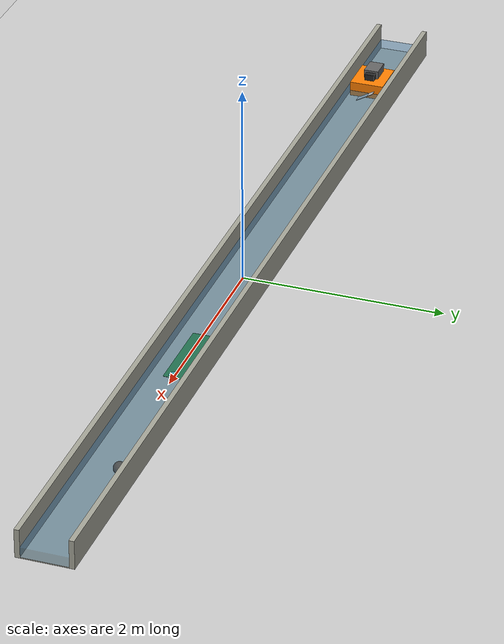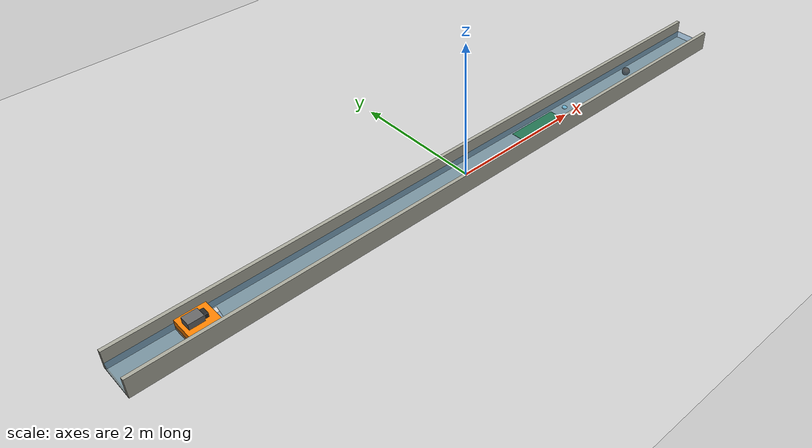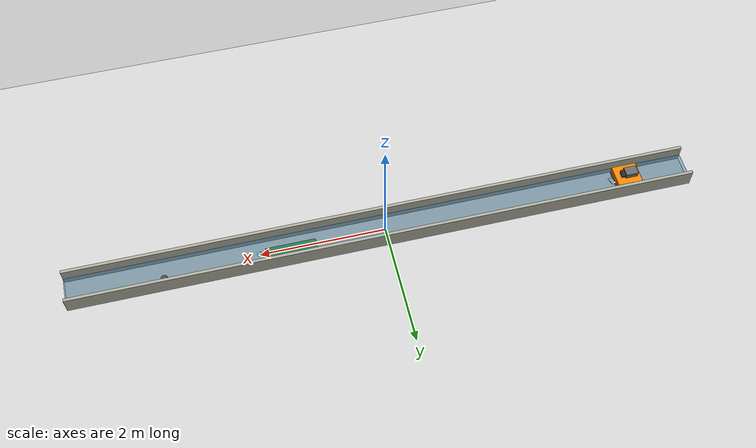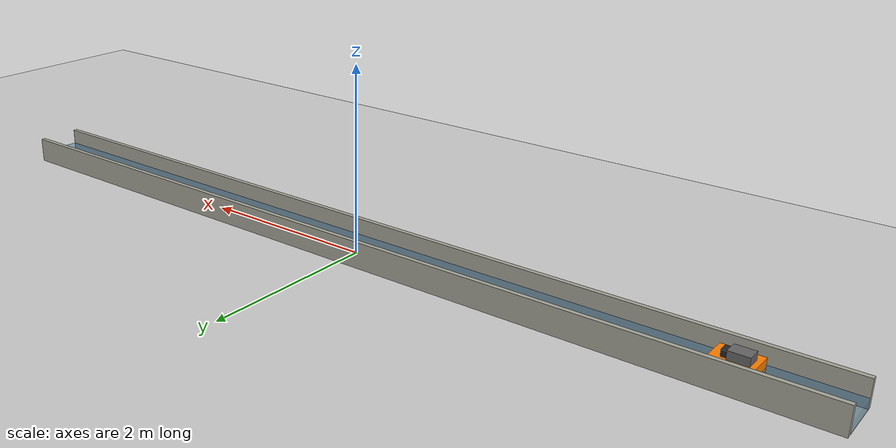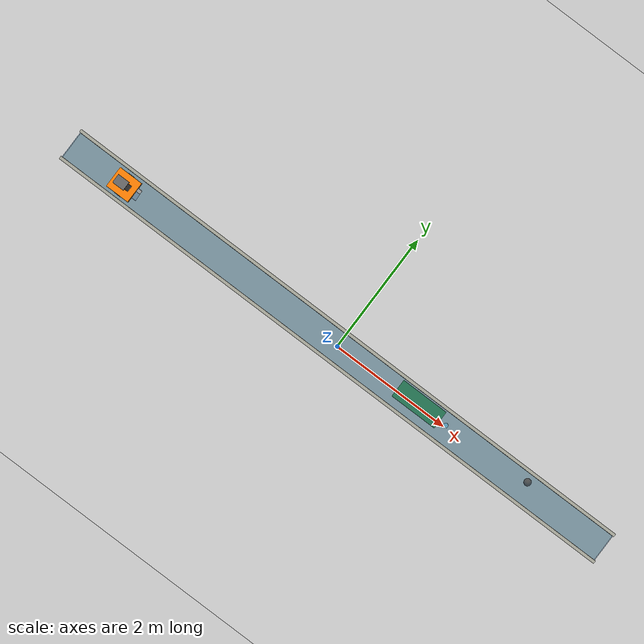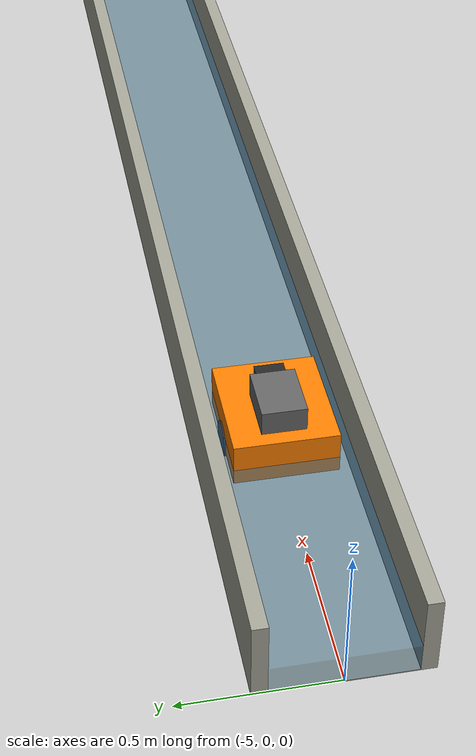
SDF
<?xml version="1.0"?>
<sdf version="1.6">
  <world name="drain_cleaning">

    <!-- Sun -->
    <include>
      <uri>model://sun</uri>
    </include>

    <!-- Ground -->
    <include>
      <uri>model://ground_plane</uri>
    </include>

    <!-- Physics -->
    <physics type="ode">
      <max_step_size>0.001</max_step_size>
      <real_time_factor>1.0</real_time_factor>
    </physics>

    <!-- Camera viewpoint -->
    <gui fullscreen="0">
      <camera name="user_camera">
        <pose>-5.5 -1.5 2.0 0 0.4 0.3</pose>
      </camera>
    </gui>

    <!--  DRAIN CHANNEL                               -->
    <!--  Concrete U-channel: 450mm wide, 10m long    -->

    <!-- Drain floor -->
    <model name="drain_floor">
      <static>true</static>
      <pose>0 0 -0.025 0 0 0</pose>
      <link name="link">
        <collision name="col">
          <geometry><box><size>10.0 0.45 0.05</size></box></geometry>
          <surface>
            <friction><ode><mu>0.5</mu><mu2>0.5</mu2></ode></friction>
          </surface>
        </collision>
        <visual name="vis">
          <geometry><box><size>10.0 0.45 0.05</size></box></geometry>
          <material>
            <ambient>0.6 0.6 0.55 1</ambient>
            <diffuse>0.7 0.7 0.65 1</diffuse>
          </material>
        </visual>
      </link>
    </model>

    <!-- Left wall -->
    <model name="drain_left_wall">
      <static>true</static>
      <pose>0 0.25 0.125 0 0 0</pose>
      <link name="link">
        <collision name="col">
          <geometry><box><size>10.0 0.05 0.30</size></box></geometry>
        </collision>
        <visual name="vis">
          <geometry><box><size>10.0 0.05 0.30</size></box></geometry>
          <material>
            <ambient>0.55 0.55 0.50 1</ambient>
            <diffuse>0.65 0.65 0.60 1</diffuse>
          </material>
        </visual>
      </link>
    </model>

    <!-- Right wall -->
    <model name="drain_right_wall">
      <static>true</static>
      <pose>0 -0.25 0.125 0 0 0</pose>
      <link name="link">
        <collision name="col">
          <geometry><box><size>10.0 0.05 0.30</size></box></geometry>
        </collision>
        <visual name="vis">
          <geometry><box><size>10.0 0.05 0.30</size></box></geometry>
          <material>
            <ambient>0.55 0.55 0.50 1</ambient>
            <diffuse>0.65 0.65 0.60 1</diffuse>
          </material>
        </visual>
      </link>
    </model>

    <!-- Shallow water (visual only) -->
    <model name="water">
      <static>true</static>
      <pose>0 0 0.05 0 0 0</pose>
      <link name="link">
        <visual name="vis">
          <geometry><box><size>10.0 0.45 0.10</size></box></geometry>
          <material>
            <ambient>0.1 0.3 0.5 1</ambient>
            <diffuse>0.15 0.4 0.6 1</diffuse>
          </material>
          <transparency>0.6</transparency>
        </visual>
      </link>
    </model>

    <!-- Algae patch -->
    <model name="algae">
      <static>true</static>
      <pose>1.5 0.05 0.001 0 0 0</pose>
      <link name="link">
        <visual name="vis">
          <geometry><box><size>0.8 0.30 0.002</size></box></geometry>
          <material>
            <ambient>0.1 0.4 0.1 1</ambient>
            <diffuse>0.15 0.5 0.15 1</diffuse>
          </material>
        </visual>
      </link>
    </model>

    <!--  AXIOM D1 ROBOT                              -->
    <model name="axiom_d1">
      <pose>-4.0 0 0 0 0 0</pose>
      <static>false</static>

      <!-- Chassis -->
      <link name="chassis">
        <pose>0 0 0.12 0 0 0</pose>
        <inertial>
          <mass>10.0</mass>
          <inertia>
            <ixx>0.121</ixx><iyy>0.152</iyy><izz>0.235</izz>
            <ixy>0</ixy><ixz>0</ixz><iyz>0</iyz>
          </inertia>
        </inertial>
        <collision name="col">
          <geometry><box><size>0.40 0.35 0.15</size></box></geometry>
        </collision>
        <visual name="chassis_vis">
          <geometry><box><size>0.40 0.35 0.15</size></box></geometry>
          <material>
            <ambient>1.0 0.5 0.0 1</ambient>
            <diffuse>1.0 0.5 0.0 1</diffuse>
          </material>
        </visual>
        <!-- Scoop -->
        <visual name="scoop_vis">
          <pose>0.22 0 -0.04 0.52 0 0</pose>
          <geometry><box><size>0.10 0.20 0.005</size></box></geometry>
          <material>
            <ambient>0.7 0.7 0.7 1</ambient>
            <diffuse>0.8 0.8 0.8 1</diffuse>
          </material>
        </visual>
        <!-- Collection bin -->
        <visual name="bin_vis">
          <pose>-0.05 0 0.10 0 0 0</pose>
          <geometry><box><size>0.20 0.15 0.12</size></box></geometry>
          <material>
            <ambient>0.3 0.3 0.3 1</ambient>
            <diffuse>0.4 0.4 0.4 1</diffuse>
          </material>
        </visual>
        <!-- Electronics enclosure -->
        <visual name="enclosure_vis">
          <pose>0.05 0 0.10 0 0 0</pose>
          <geometry><box><size>0.12 0.10 0.08</size></box></geometry>
          <material>
            <ambient>0.1 0.1 0.1 1</ambient>
            <diffuse>0.15 0.15 0.15 1</diffuse>
          </material>
        </visual>

        <!-- Camera sensor -->
        <sensor name="camera" type="camera">
          <pose>0.20 0 0.05 0 0 0</pose>
          <always_on>true</always_on>
          <update_rate>15</update_rate>
          <camera>
            <horizontal_fov>1.047</horizontal_fov>
            <image><width>640</width><height>480</height></image>
            <clip><near>0.05</near><far>50</far></clip>
          </camera>
        </sensor>

        <!-- IMU sensor -->
        <sensor name="imu" type="imu">
          <always_on>true</always_on>
          <update_rate>50</update_rate>
        </sensor>
      </link>

      <!-- Left track (cylinder approximation of caterpillar track) -->
      <!-- Radius 0.06m, width 0.04m, at z=0.06 so bottom touches floor -->
      <link name="left_track">
        <pose>0 0.16 0.06 0 1.5708 1.5708</pose>
        <inertial>
          <mass>2.0</mass>
          <inertia>
            <ixx>0.002</ixx><iyy>0.004</iyy><izz>0.002</izz>
            <ixy>0</ixy><ixz>0</ixz><iyz>0</iyz>
          </inertia>
        </inertial>
        <collision name="col">
          <geometry><cylinder><radius>0.06</radius><length>0.04</length></cylinder></geometry>
          <surface>
            <friction><ode><mu>1.5</mu><mu2>1.0</mu2></ode></friction>
          </surface>
        </collision>
        <visual name="vis">
          <geometry><cylinder><radius>0.06</radius><length>0.04</length></cylinder></geometry>
          <material>
            <ambient>0.1 0.1 0.1 1</ambient>
            <diffuse>0.2 0.2 0.2 1</diffuse>
          </material>
        </visual>
      </link>

      <!-- Right track -->
      <link name="right_track">
        <pose>0 -0.16 0.06 0 1.5708 1.5708</pose>
        <inertial>
          <mass>2.0</mass>
          <inertia>
            <ixx>0.002</ixx><iyy>0.004</iyy><izz>0.002</izz>
            <ixy>0</ixy><ixz>0</ixz><iyz>0</iyz>
          </inertia>
        </inertial>
        <collision name="col">
          <geometry><cylinder><radius>0.06</radius><length>0.04</length></cylinder></geometry>
          <surface>
            <friction><ode><mu>1.5</mu><mu2>1.0</mu2></ode></friction>
          </surface>
        </collision>
        <visual name="vis">
          <geometry><cylinder><radius>0.06</radius><length>0.04</length></cylinder></geometry>
          <material>
            <ambient>0.1 0.1 0.1 1</ambient>
            <diffuse>0.2 0.2 0.2 1</diffuse>
          </material>
        </visual>
      </link>

      <!-- Left brush -->
      <link name="left_brush">
        <pose>0.10 0.14 0.02 0 1.5708 0</pose>
        <inertial>
          <mass>0.5</mass>
          <inertia>
            <ixx>0.0002</ixx><iyy>0.0002</iyy><izz>0.0002</izz>
            <ixy>0</ixy><ixz>0</ixz><iyz>0</iyz>
          </inertia>
        </inertial>
        <visual name="vis">
          <geometry><cylinder><radius>0.03</radius><length>0.02</length></cylinder></geometry>
          <material>
            <ambient>0.6 0.6 0.2 1</ambient>
            <diffuse>0.7 0.7 0.3 1</diffuse>
          </material>
        </visual>
      </link>

      <!-- Right brush -->
      <link name="right_brush">
        <pose>0.10 -0.14 0.02 0 1.5708 0</pose>
        <inertial>
          <mass>0.5</mass>
          <inertia>
            <ixx>0.0002</ixx><iyy>0.0002</iyy><izz>0.0002</izz>
            <ixy>0</ixy><ixz>0</ixz><iyz>0</iyz>
          </inertia>
        </inertial>
        <visual name="vis">
          <geometry><cylinder><radius>0.03</radius><length>0.02</length></cylinder></geometry>
          <material>
            <ambient>0.6 0.6 0.2 1</ambient>
            <diffuse>0.7 0.7 0.3 1</diffuse>
          </material>
        </visual>
      </link>

      <!-- Joints -->
      <joint name="left_track_joint" type="revolute">
        <parent>chassis</parent>
        <child>left_track</child>
        <axis><xyz>0 0 1</xyz></axis>
      </joint>

      <joint name="right_track_joint" type="revolute">
        <parent>chassis</parent>
        <child>right_track</child>
        <axis><xyz>0 0 1</xyz></axis>
      </joint>

      <joint name="left_brush_joint" type="fixed">
        <parent>chassis</parent>
        <child>left_brush</child>
      </joint>

      <joint name="right_brush_joint" type="fixed">
        <parent>chassis</parent>
        <child>right_brush</child>
      </joint>

      <!-- Differential drive plugin (Gazebo Classic) -->
      <plugin name="diff_drive" filename="libDiffDrivePlugin.so">
        <left_joint>left_track_joint</left_joint>
        <right_joint>right_track_joint</right_joint>
        <torque>12</torque>
      </plugin>

    </model>

    <!--  DEBRIS                                      -->

    <!-- Plastic bottle -->
    <model name="debris_bottle">
      <pose>2.0 0.05 0.06 0.3 0 0.5</pose>
      <link name="link">
        <inertial>
          <mass>0.03</mass>
          <inertia>
            <ixx>0.00001</ixx><iyy>0.00001</iyy><izz>0.000005</izz>
            <ixy>0</ixy><ixz>0</ixz><iyz>0</iyz>
          </inertia>
        </inertial>
        <collision name="col">
          <geometry><cylinder><radius>0.035</radius><length>0.12</length></cylinder></geometry>
        </collision>
        <visual name="vis">
          <geometry><cylinder><radius>0.035</radius><length>0.12</length></cylinder></geometry>
          <material>
            <ambient>0.2 0.6 0.8 1</ambient>
            <diffuse>0.3 0.7 0.9 1</diffuse>
          </material>
          <transparency>0.3</transparency>
        </visual>
      </link>
    </model>

    <!-- Organic debris -->
    <model name="debris_organic">
      <pose>3.5 0.10 0.04 0 0 0.8</pose>
      <link name="link">
        <inertial>
          <mass>0.15</mass>
          <inertia>
            <ixx>0.00005</ixx><iyy>0.00005</iyy><izz>0.00005</izz>
            <ixy>0</ixy><ixz>0</ixz><iyz>0</iyz>
          </inertia>
        </inertial>
        <collision name="col">
          <geometry><sphere><radius>0.06</radius></sphere></geometry>
        </collision>
        <visual name="vis">
          <geometry><sphere><radius>0.06</radius></sphere></geometry>
          <material>
            <ambient>0.3 0.2 0.1 1</ambient>
            <diffuse>0.4 0.25 0.12 1</diffuse>
          </material>
        </visual>
      </link>
    </model>

    <!-- Plastic bag -->
    <model name="debris_bag">
      <pose>0.5 -0.05 0.03 0 0 0.3</pose>
      <link name="link">
        <inertial>
          <mass>0.01</mass>
          <inertia>
            <ixx>0.000005</ixx><iyy>0.000005</iyy><izz>0.000002</izz>
            <ixy>0</ixy><ixz>0</ixz><iyz>0</iyz>
          </inertia>
        </inertial>
        <collision name="col">
          <geometry><box><size>0.15 0.12 0.005</size></box></geometry>
        </collision>
        <visual name="vis">
          <geometry><box><size>0.15 0.12 0.005</size></box></geometry>
          <material>
            <ambient>0.8 0.8 0.8 1</ambient>
            <diffuse>0.9 0.9 0.9 1</diffuse>
          </material>
          <transparency>0.4</transparency>
        </visual>
      </link>
    </model>

  </world>
</sdf>
